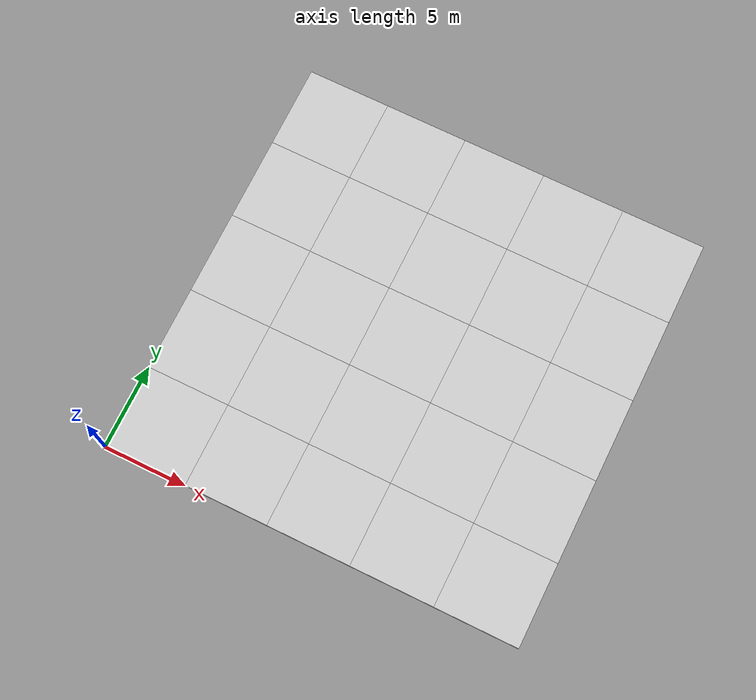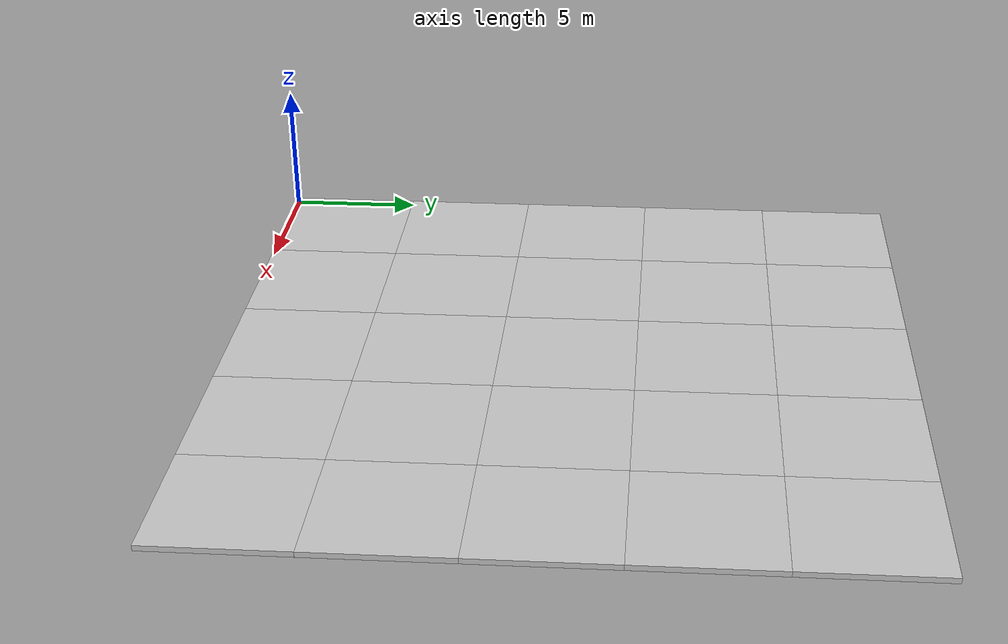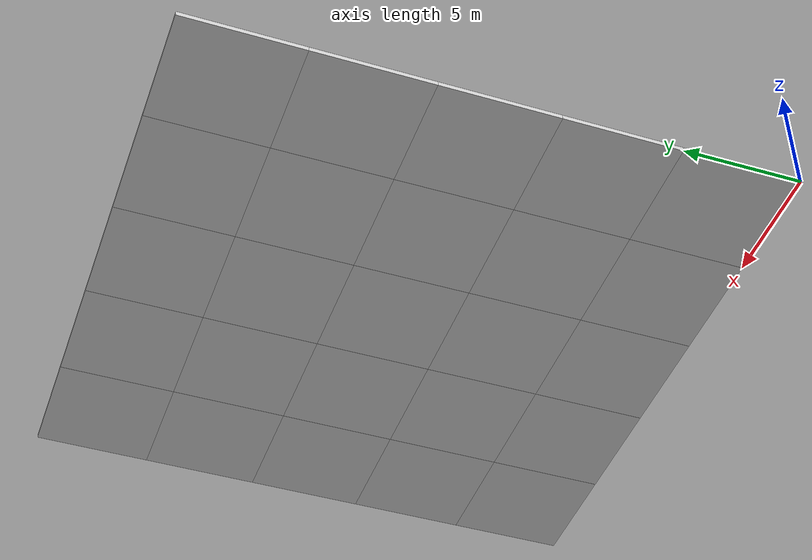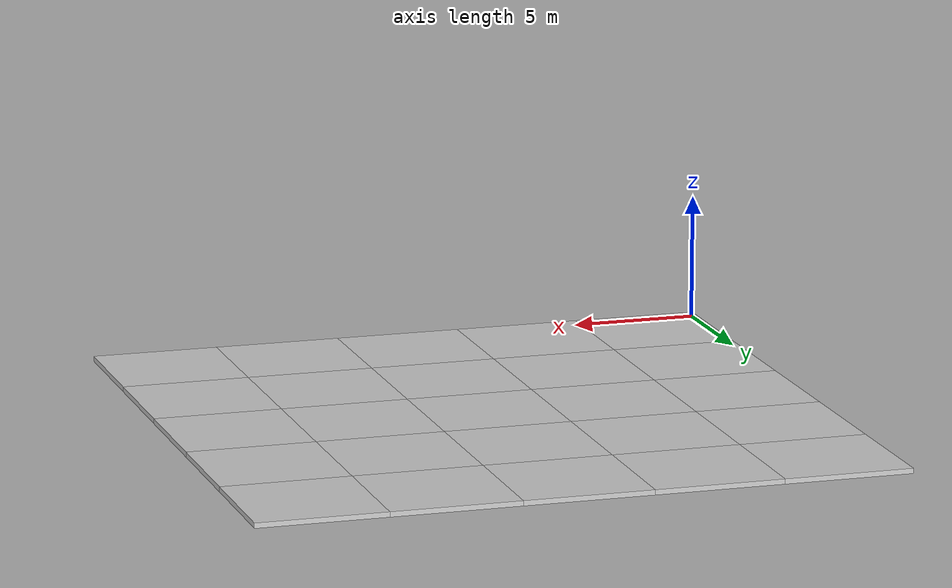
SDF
<?xml version="1.0" ?>
<sdf version="1.5">
  <model name="lightgrey_floor">
    <static>true</static>
    <link name="link1">
      <pose>2.5 2.5 0.1 0 0 0</pose>
      <collision name="collision">
        <geometry>
          <box>
            <size>5 5 0.2</size>
          </box>
        </geometry>
      </collision>
      <visual name="visual">
        <cast_shadows>false</cast_shadows>
        <geometry>
          <box>
            <size>5 5 0.2</size>
          </box>
        </geometry>
        <material>
          <script>
            <uri>model://lightgrey_floor/materials/scripts</uri>
            <uri>model://lightgrey_floor/materials/textures</uri>
            <name>vrc/lightgrey_floor</name>
          </script>
        </material>
      </visual>
    </link>
    <link name="link2">
      <pose>7.5 2.5 0.1 0 0 0</pose>
      <collision name="collision">
        <geometry>
          <box>
            <size>5 5 0.2</size>
          </box>
        </geometry>
      </collision>
      <visual name="visual">
        <cast_shadows>false</cast_shadows>
        <geometry>
          <box>
            <size>5 5 0.2</size>
          </box>
        </geometry>
        <material>
          <script>
            <uri>model://lightgrey_floor/materials/scripts</uri>
            <uri>model://lightgrey_floor/materials/textures</uri>
            <name>vrc/lightgrey_floor</name>
          </script>
        </material>
      </visual>
    </link>
    <link name="link3">
      <pose>12.5 2.5 0.1 0 0 0</pose>
      <collision name="collision">
        <geometry>
          <box>
            <size>5 5 0.2</size>
          </box>
        </geometry>
      </collision>
      <visual name="visual">
        <cast_shadows>false</cast_shadows>
        <geometry>
          <box>
            <size>5 5 0.2</size>
          </box>
        </geometry>
        <material>
          <script>
            <uri>model://lightgrey_floor/materials/scripts</uri>
            <uri>model://lightgrey_floor/materials/textures</uri>
            <name>vrc/lightgrey_floor</name>
          </script>
        </material>
      </visual>
    </link>
    <link name="link4">
      <pose>17.5 2.5 0.1 0 0 0</pose>
      <collision name="collision">
        <geometry>
          <box>
            <size>5 5 0.2</size>
          </box>
        </geometry>
      </collision>
      <visual name="visual">
        <cast_shadows>false</cast_shadows>
        <geometry>
          <box>
            <size>5 5 0.2</size>
          </box>
        </geometry>
        <material>
          <script>
            <uri>model://lightgrey_floor/materials/scripts</uri>
            <uri>model://lightgrey_floor/materials/textures</uri>
            <name>vrc/lightgrey_floor</name>
          </script>
        </material>
      </visual>
    </link>
    <link name="link5">
      <pose>22.5 2.5 0.1 0 0 0</pose>
      <collision name="collision">
        <geometry>
          <box>
            <size>5 5 0.2</size>
          </box>
        </geometry>
      </collision>
      <visual name="visual">
        <cast_shadows>false</cast_shadows>
        <geometry>
          <box>
            <size>5 5 0.2</size>
          </box>
        </geometry>
        <material>
          <script>
            <uri>model://lightgrey_floor/materials/scripts</uri>
            <uri>model://lightgrey_floor/materials/textures</uri>
            <name>vrc/lightgrey_floor</name>
          </script>
        </material>
      </visual>
    </link>
    <link name="link6">
      <pose>2.5 7.5 0.1 0 0 0</pose>
      <collision name="collision">
        <geometry>
          <box>
            <size>5 5 0.2</size>
          </box>
        </geometry>
      </collision>
      <visual name="visual">
        <cast_shadows>false</cast_shadows>
        <geometry>
          <box>
            <size>5 5 0.2</size>
          </box>
        </geometry>
        <material>
          <script>
            <uri>model://lightgrey_floor/materials/scripts</uri>
            <uri>model://lightgrey_floor/materials/textures</uri>
            <name>vrc/lightgrey_floor</name>
          </script>
        </material>
      </visual>
    </link>
    <link name="link7">
      <pose>7.5 7.5 0.1 0 0 0</pose>
      <collision name="collision">
        <geometry>
          <box>
            <size>5 5 0.2</size>
          </box>
        </geometry>
      </collision>
      <visual name="visual">
        <cast_shadows>false</cast_shadows>
        <geometry>
          <box>
            <size>5 5 0.2</size>
          </box>
        </geometry>
        <material>
          <script>
            <uri>model://lightgrey_floor/materials/scripts</uri>
            <uri>model://lightgrey_floor/materials/textures</uri>
            <name>vrc/lightgrey_floor</name>
          </script>
        </material>
      </visual>
    </link>
    <link name="link8">
      <pose>12.5 7.5 0.1 0 0 0</pose>
      <collision name="collision">
        <geometry>
          <box>
            <size>5 5 0.2</size>
          </box>
        </geometry>
      </collision>
      <visual name="visual">
        <cast_shadows>false</cast_shadows>
        <geometry>
          <box>
            <size>5 5 0.2</size>
          </box>
        </geometry>
        <material>
          <script>
            <uri>model://lightgrey_floor/materials/scripts</uri>
            <uri>model://lightgrey_floor/materials/textures</uri>
            <name>vrc/lightgrey_floor</name>
          </script>
        </material>
      </visual>
    </link>
    <link name="link9">
      <pose>17.5 7.5 0.1 0 0 0</pose>
      <collision name="collision">
        <geometry>
          <box>
            <size>5 5 0.2</size>
          </box>
        </geometry>
      </collision>
      <visual name="visual">
        <cast_shadows>false</cast_shadows>
        <geometry>
          <box>
            <size>5 5 0.2</size>
          </box>
        </geometry>
        <material>
          <script>
            <uri>model://lightgrey_floor/materials/scripts</uri>
            <uri>model://lightgrey_floor/materials/textures</uri>
            <name>vrc/lightgrey_floor</name>
          </script>
        </material>
      </visual>
    </link>
    <link name="link10">
      <pose>22.5 7.5 0.1 0 0 0</pose>
      <collision name="collision">
        <geometry>
          <box>
            <size>5 5 0.2</size>
          </box>
        </geometry>
      </collision>
      <visual name="visual">
        <cast_shadows>false</cast_shadows>
        <geometry>
          <box>
            <size>5 5 0.2</size>
          </box>
        </geometry>
        <material>
          <script>
            <uri>model://lightgrey_floor/materials/scripts</uri>
            <uri>model://lightgrey_floor/materials/textures</uri>
            <name>vrc/lightgrey_floor</name>
          </script>
        </material>
      </visual>
    </link>
    <link name="link11">
      <pose>2.5 12.5 0.1 0 0 0</pose>
      <collision name="collision">
        <geometry>
          <box>
            <size>5 5 0.2</size>
          </box>
        </geometry>
      </collision>
      <visual name="visual">
        <cast_shadows>false</cast_shadows>
        <geometry>
          <box>
            <size>5 5 0.2</size>
          </box>
        </geometry>
        <material>
          <script>
            <uri>model://lightgrey_floor/materials/scripts</uri>
            <uri>model://lightgrey_floor/materials/textures</uri>
            <name>vrc/lightgrey_floor</name>
          </script>
        </material>
      </visual>
    </link>
    <link name="link12">
      <pose>7.5 12.5 0.1 0 0 0</pose>
      <collision name="collision">
        <geometry>
          <box>
            <size>5 5 0.2</size>
          </box>
        </geometry>
      </collision>
      <visual name="visual">
        <cast_shadows>false</cast_shadows>
        <geometry>
          <box>
            <size>5 5 0.2</size>
          </box>
        </geometry>
        <material>
          <script>
            <uri>model://lightgrey_floor/materials/scripts</uri>
            <uri>model://lightgrey_floor/materials/textures</uri>
            <name>vrc/lightgrey_floor</name>
          </script>
        </material>
      </visual>
    </link>
    <link name="link13">
      <pose>12.5 12.5 0.1 0 0 0</pose>
      <collision name="collision">
        <geometry>
          <box>
            <size>5 5 0.2</size>
          </box>
        </geometry>
      </collision>
      <visual name="visual">
        <cast_shadows>false</cast_shadows>
        <geometry>
          <box>
            <size>5 5 0.2</size>
          </box>
        </geometry>
        <material>
          <script>
            <uri>model://lightgrey_floor/materials/scripts</uri>
            <uri>model://lightgrey_floor/materials/textures</uri>
            <name>vrc/lightgrey_floor</name>
          </script>
        </material>
      </visual>
    </link>
    <link name="link14">
      <pose>17.5 12.5 0.1 0 0 0</pose>
      <collision name="collision">
        <geometry>
          <box>
            <size>5 5 0.2</size>
          </box>
        </geometry>
      </collision>
      <visual name="visual">
        <cast_shadows>false</cast_shadows>
        <geometry>
          <box>
            <size>5 5 0.2</size>
          </box>
        </geometry>
        <material>
          <script>
            <uri>model://lightgrey_floor/materials/scripts</uri>
            <uri>model://lightgrey_floor/materials/textures</uri>
            <name>vrc/lightgrey_floor</name>
          </script>
        </material>
      </visual>
    </link>
    <link name="link15">
      <pose>22.5 12.5 0.1 0 0 0</pose>
      <collision name="collision">
        <geometry>
          <box>
            <size>5 5 0.2</size>
          </box>
        </geometry>
      </collision>
      <visual name="visual">
        <cast_shadows>false</cast_shadows>
        <geometry>
          <box>
            <size>5 5 0.2</size>
          </box>
        </geometry>
        <material>
          <script>
            <uri>model://lightgrey_floor/materials/scripts</uri>
            <uri>model://lightgrey_floor/materials/textures</uri>
            <name>vrc/lightgrey_floor</name>
          </script>
        </material>
      </visual>
    </link>
    <link name="link16">
      <pose>2.5 17.5 0.1 0 0 0</pose>
      <collision name="collision">
        <geometry>
          <box>
            <size>5 5 0.2</size>
          </box>
        </geometry>
      </collision>
      <visual name="visual">
        <cast_shadows>false</cast_shadows>
        <geometry>
          <box>
            <size>5 5 0.2</size>
          </box>
        </geometry>
        <material>
          <script>
            <uri>model://lightgrey_floor/materials/scripts</uri>
            <uri>model://lightgrey_floor/materials/textures</uri>
            <name>vrc/lightgrey_floor</name>
          </script>
        </material>
      </visual>
    </link>
    <link name="link17">
      <pose>7.5 17.5 0.1 0 0 0</pose>
      <collision name="collision">
        <geometry>
          <box>
            <size>5 5 0.2</size>
          </box>
        </geometry>
      </collision>
      <visual name="visual">
        <cast_shadows>false</cast_shadows>
        <geometry>
          <box>
            <size>5 5 0.2</size>
          </box>
        </geometry>
        <material>
          <script>
            <uri>model://lightgrey_floor/materials/scripts</uri>
            <uri>model://lightgrey_floor/materials/textures</uri>
            <name>vrc/lightgrey_floor</name>
          </script>
        </material>
      </visual>
    </link>
    <link name="link18">
      <pose>12.5 17.5 0.1 0 0 0</pose>
      <collision name="collision">
        <geometry>
          <box>
            <size>5 5 0.2</size>
          </box>
        </geometry>
      </collision>
      <visual name="visual">
        <cast_shadows>false</cast_shadows>
        <geometry>
          <box>
            <size>5 5 0.2</size>
          </box>
        </geometry>
        <material>
          <script>
            <uri>model://lightgrey_floor/materials/scripts</uri>
            <uri>model://lightgrey_floor/materials/textures</uri>
            <name>vrc/lightgrey_floor</name>
          </script>
        </material>
      </visual>
    </link>
    <link name="link19">
      <pose>17.5 17.5 0.1 0 0 0</pose>
      <collision name="collision">
        <geometry>
          <box>
            <size>5 5 0.2</size>
          </box>
        </geometry>
      </collision>
      <visual name="visual">
        <cast_shadows>false</cast_shadows>
        <geometry>
          <box>
            <size>5 5 0.2</size>
          </box>
        </geometry>
        <material>
          <script>
            <uri>model://lightgrey_floor/materials/scripts</uri>
            <uri>model://lightgrey_floor/materials/textures</uri>
            <name>vrc/lightgrey_floor</name>
          </script>
        </material>
      </visual>
    </link>
    <link name="link20">
      <pose>22.5 17.5 0.1 0 0 0</pose>
      <collision name="collision">
        <geometry>
          <box>
            <size>5 5 0.2</size>
          </box>
        </geometry>
      </collision>
      <visual name="visual">
        <cast_shadows>false</cast_shadows>
        <geometry>
          <box>
            <size>5 5 0.2</size>
          </box>
        </geometry>
        <material>
          <script>
            <uri>model://lightgrey_floor/materials/scripts</uri>
            <uri>model://lightgrey_floor/materials/textures</uri>
            <name>vrc/lightgrey_floor</name>
          </script>
        </material>
      </visual>
    </link>
    <link name="link21">
      <pose>2.5 22.5 0.1 0 0 0</pose>
      <collision name="collision">
        <geometry>
          <box>
            <size>5 5 0.2</size>
          </box>
        </geometry>
      </collision>
      <visual name="visual">
        <cast_shadows>false</cast_shadows>
        <geometry>
          <box>
            <size>5 5 0.2</size>
          </box>
        </geometry>
        <material>
          <script>
            <uri>model://lightgrey_floor/materials/scripts</uri>
            <uri>model://lightgrey_floor/materials/textures</uri>
            <name>vrc/lightgrey_floor</name>
          </script>
        </material>
      </visual>
    </link>
    <link name="link22">
      <pose>7.5 22.5 0.1 0 0 0</pose>
      <collision name="collision">
        <geometry>
          <box>
            <size>5 5 0.2</size>
          </box>
        </geometry>
      </collision>
      <visual name="visual">
        <cast_shadows>false</cast_shadows>
        <geometry>
          <box>
            <size>5 5 0.2</size>
          </box>
        </geometry>
        <material>
          <script>
            <uri>model://lightgrey_floor/materials/scripts</uri>
            <uri>model://lightgrey_floor/materials/textures</uri>
            <name>vrc/lightgrey_floor</name>
          </script>
        </material>
      </visual>
    </link>
    <link name="link23">
      <pose>12.5 22.5 0.1 0 0 0</pose>
      <collision name="collision">
        <geometry>
          <box>
            <size>5 5 0.2</size>
          </box>
        </geometry>
      </collision>
      <visual name="visual">
        <cast_shadows>false</cast_shadows>
        <geometry>
          <box>
            <size>5 5 0.2</size>
          </box>
        </geometry>
        <material>
          <script>
            <uri>model://lightgrey_floor/materials/scripts</uri>
            <uri>model://lightgrey_floor/materials/textures</uri>
            <name>vrc/lightgrey_floor</name>
          </script>
        </material>
      </visual>
    </link>
    <link name="link24">
      <pose>17.5 22.5 0.1 0 0 0</pose>
      <collision name="collision">
        <geometry>
          <box>
            <size>5 5 0.2</size>
          </box>
        </geometry>
      </collision>
      <visual name="visual">
        <cast_shadows>false</cast_shadows>
        <geometry>
          <box>
            <size>5 5 0.2</size>
          </box>
        </geometry>
        <material>
          <script>
            <uri>model://lightgrey_floor/materials/scripts</uri>
            <uri>model://lightgrey_floor/materials/textures</uri>
            <name>vrc/lightgrey_floor</name>
          </script>
        </material>
      </visual>
    </link>
    <link name="link25">
      <pose>22.5 22.5 0.1 0 0 0</pose>
      <collision name="collision">
        <geometry>
          <box>
            <size>5 5 0.2</size>
          </box>
        </geometry>
      </collision>
      <visual name="visual">
        <cast_shadows>false</cast_shadows>
        <geometry>
          <box>
            <size>5 5 0.2</size>
          </box>
        </geometry>
        <material>
          <script>
            <uri>model://lightgrey_floor/materials/scripts</uri>
            <uri>model://lightgrey_floor/materials/textures</uri>
            <name>vrc/lightgrey_floor</name>
          </script>
        </material>
      </visual>
    </link>
  </model>
</sdf>
